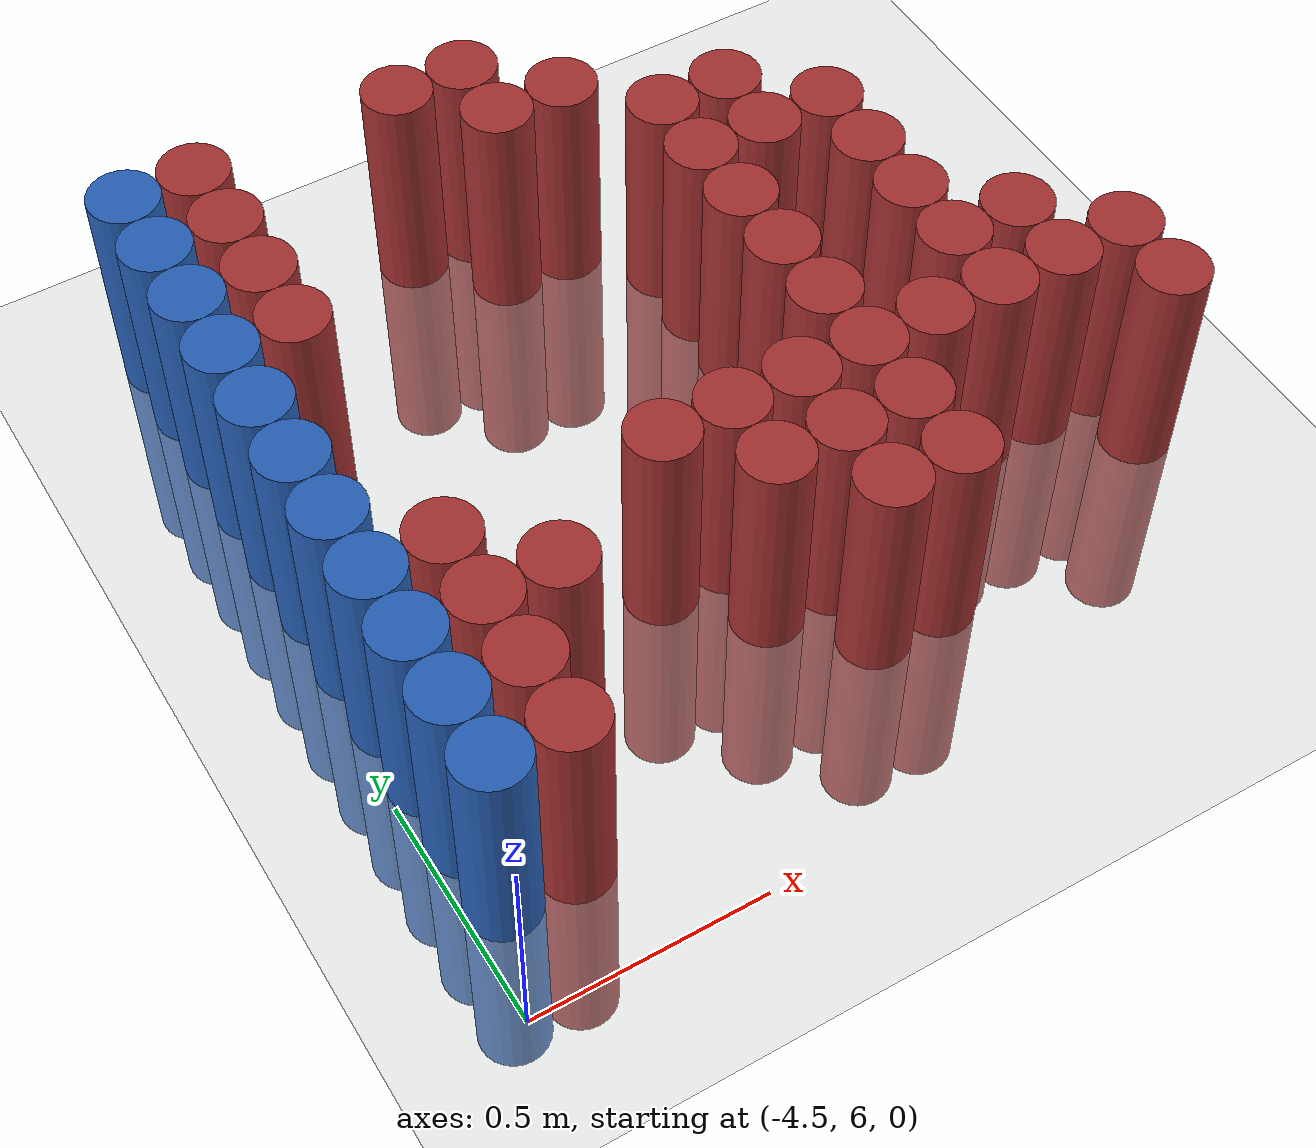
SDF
<sdf version="1.6">
 <world name="default">
  <model name="ground_plane">
   <static>1</static>
   <link name="link">
    <collision name="collision">
     <geometry><plane><normal>0 0 1</normal><size>100 100</size></plane></geometry>
     <surface><friction><ode><mu>100</mu><mu2>50</mu2></ode></friction></surface>
    </collision>
    <visual name="visual">
     <cast_shadows>0</cast_shadows>
     <geometry><plane><normal>0 0 1</normal><size>100 100</size></plane></geometry>
     <material>
      <script><uri>file://media/materials/scripts/gazebo.material</uri><name>Gazebo/Grey</name></script>
     </material>
    </visual>
   </link>
  </model>
  <model name="unit_cylinder_103">
   <static>1</static>
   <pose>-4.425000 6.225000 0.000000 0.000000 0.000000 0.000000</pose>
   <link name="link">
    <inertial>
     <mass>1</mass>
     <inertia><ixx>0.145833</ixx><ixy>0</ixy><ixz>0</ixz><iyy>0.145833</iyy><iyz>0</iyz><izz>0.125</izz></inertia>
    </inertial>
    <collision name="collision">
     <geometry><cylinder><radius>0.075000</radius><length>1</length></cylinder></geometry>
    </collision>
    <visual name="visual">
     <geometry><cylinder><radius>0.075000</radius><length>1</length></cylinder></geometry>
     <material>
      <ambient>0.152000 0.379000 0.720000 1</ambient>
      <diffuse>0.152000 0.379000 0.720000 1</diffuse>
     </material>
     <material>
      <script><name>Gazebo/Grey</name><uri>file://media/materials/scripts/gazebo.material</uri></script>
     </material>
    </visual>
   </link>
  </model>
  <model name="unit_cylinder_104">
   <static>1</static>
   <pose>-4.425000 6.375000 0.000000 0.000000 0.000000 0.000000</pose>
   <link name="link">
    <inertial>
     <mass>1</mass>
     <inertia><ixx>0.145833</ixx><ixy>0</ixy><ixz>0</ixz><iyy>0.145833</iyy><iyz>0</iyz><izz>0.125</izz></inertia>
    </inertial>
    <collision name="collision">
     <geometry><cylinder><radius>0.075000</radius><length>1</length></cylinder></geometry>
    </collision>
    <visual name="visual">
     <geometry><cylinder><radius>0.075000</radius><length>1</length></cylinder></geometry>
     <material>
      <ambient>0.152000 0.379000 0.720000 1</ambient>
      <diffuse>0.152000 0.379000 0.720000 1</diffuse>
     </material>
     <material>
      <script><name>Gazebo/Grey</name><uri>file://media/materials/scripts/gazebo.material</uri></script>
     </material>
    </visual>
   </link>
  </model>
  <model name="unit_cylinder_105">
   <static>1</static>
   <pose>-4.425000 6.525000 0.000000 0.000000 0.000000 0.000000</pose>
   <link name="link">
    <inertial>
     <mass>1</mass>
     <inertia><ixx>0.145833</ixx><ixy>0</ixy><ixz>0</ixz><iyy>0.145833</iyy><iyz>0</iyz><izz>0.125</izz></inertia>
    </inertial>
    <collision name="collision">
     <geometry><cylinder><radius>0.075000</radius><length>1</length></cylinder></geometry>
    </collision>
    <visual name="visual">
     <geometry><cylinder><radius>0.075000</radius><length>1</length></cylinder></geometry>
     <material>
      <ambient>0.152000 0.379000 0.720000 1</ambient>
      <diffuse>0.152000 0.379000 0.720000 1</diffuse>
     </material>
     <material>
      <script><name>Gazebo/Grey</name><uri>file://media/materials/scripts/gazebo.material</uri></script>
     </material>
    </visual>
   </link>
  </model>
  <model name="unit_cylinder_106">
   <static>1</static>
   <pose>-4.425000 6.675000 0.000000 0.000000 0.000000 0.000000</pose>
   <link name="link">
    <inertial>
     <mass>1</mass>
     <inertia><ixx>0.145833</ixx><ixy>0</ixy><ixz>0</ixz><iyy>0.145833</iyy><iyz>0</iyz><izz>0.125</izz></inertia>
    </inertial>
    <collision name="collision">
     <geometry><cylinder><radius>0.075000</radius><length>1</length></cylinder></geometry>
    </collision>
    <visual name="visual">
     <geometry><cylinder><radius>0.075000</radius><length>1</length></cylinder></geometry>
     <material>
      <ambient>0.152000 0.379000 0.720000 1</ambient>
      <diffuse>0.152000 0.379000 0.720000 1</diffuse>
     </material>
     <material>
      <script><name>Gazebo/Grey</name><uri>file://media/materials/scripts/gazebo.material</uri></script>
     </material>
    </visual>
   </link>
  </model>
  <model name="unit_cylinder_107">
   <static>1</static>
   <pose>-4.425000 6.825000 0.000000 0.000000 0.000000 0.000000</pose>
   <link name="link">
    <inertial>
     <mass>1</mass>
     <inertia><ixx>0.145833</ixx><ixy>0</ixy><ixz>0</ixz><iyy>0.145833</iyy><iyz>0</iyz><izz>0.125</izz></inertia>
    </inertial>
    <collision name="collision">
     <geometry><cylinder><radius>0.075000</radius><length>1</length></cylinder></geometry>
    </collision>
    <visual name="visual">
     <geometry><cylinder><radius>0.075000</radius><length>1</length></cylinder></geometry>
     <material>
      <ambient>0.152000 0.379000 0.720000 1</ambient>
      <diffuse>0.152000 0.379000 0.720000 1</diffuse>
     </material>
     <material>
      <script><name>Gazebo/Grey</name><uri>file://media/materials/scripts/gazebo.material</uri></script>
     </material>
    </visual>
   </link>
  </model>
  <model name="unit_cylinder_108">
   <static>1</static>
   <pose>-4.425000 6.975000 0.000000 0.000000 0.000000 0.000000</pose>
   <link name="link">
    <inertial>
     <mass>1</mass>
     <inertia><ixx>0.145833</ixx><ixy>0</ixy><ixz>0</ixz><iyy>0.145833</iyy><iyz>0</iyz><izz>0.125</izz></inertia>
    </inertial>
    <collision name="collision">
     <geometry><cylinder><radius>0.075000</radius><length>1</length></cylinder></geometry>
    </collision>
    <visual name="visual">
     <geometry><cylinder><radius>0.075000</radius><length>1</length></cylinder></geometry>
     <material>
      <ambient>0.152000 0.379000 0.720000 1</ambient>
      <diffuse>0.152000 0.379000 0.720000 1</diffuse>
     </material>
     <material>
      <script><name>Gazebo/Grey</name><uri>file://media/materials/scripts/gazebo.material</uri></script>
     </material>
    </visual>
   </link>
  </model>
  <model name="unit_cylinder_109">
   <static>1</static>
   <pose>-4.425000 7.125000 0.000000 0.000000 0.000000 0.000000</pose>
   <link name="link">
    <inertial>
     <mass>1</mass>
     <inertia><ixx>0.145833</ixx><ixy>0</ixy><ixz>0</ixz><iyy>0.145833</iyy><iyz>0</iyz><izz>0.125</izz></inertia>
    </inertial>
    <collision name="collision">
     <geometry><cylinder><radius>0.075000</radius><length>1</length></cylinder></geometry>
    </collision>
    <visual name="visual">
     <geometry><cylinder><radius>0.075000</radius><length>1</length></cylinder></geometry>
     <material>
      <ambient>0.152000 0.379000 0.720000 1</ambient>
      <diffuse>0.152000 0.379000 0.720000 1</diffuse>
     </material>
     <material>
      <script><name>Gazebo/Grey</name><uri>file://media/materials/scripts/gazebo.material</uri></script>
     </material>
    </visual>
   </link>
  </model>
  <model name="unit_cylinder_110">
   <static>1</static>
   <pose>-4.425000 7.275000 0.000000 0.000000 0.000000 0.000000</pose>
   <link name="link">
    <inertial>
     <mass>1</mass>
     <inertia><ixx>0.145833</ixx><ixy>0</ixy><ixz>0</ixz><iyy>0.145833</iyy><iyz>0</iyz><izz>0.125</izz></inertia>
    </inertial>
    <collision name="collision">
     <geometry><cylinder><radius>0.075000</radius><length>1</length></cylinder></geometry>
    </collision>
    <visual name="visual">
     <geometry><cylinder><radius>0.075000</radius><length>1</length></cylinder></geometry>
     <material>
      <ambient>0.152000 0.379000 0.720000 1</ambient>
      <diffuse>0.152000 0.379000 0.720000 1</diffuse>
     </material>
     <material>
      <script><name>Gazebo/Grey</name><uri>file://media/materials/scripts/gazebo.material</uri></script>
     </material>
    </visual>
   </link>
  </model>
  <model name="unit_cylinder_111">
   <static>1</static>
   <pose>-4.425000 7.425000 0.000000 0.000000 0.000000 0.000000</pose>
   <link name="link">
    <inertial>
     <mass>1</mass>
     <inertia><ixx>0.145833</ixx><ixy>0</ixy><ixz>0</ixz><iyy>0.145833</iyy><iyz>0</iyz><izz>0.125</izz></inertia>
    </inertial>
    <collision name="collision">
     <geometry><cylinder><radius>0.075000</radius><length>1</length></cylinder></geometry>
    </collision>
    <visual name="visual">
     <geometry><cylinder><radius>0.075000</radius><length>1</length></cylinder></geometry>
     <material>
      <ambient>0.152000 0.379000 0.720000 1</ambient>
      <diffuse>0.152000 0.379000 0.720000 1</diffuse>
     </material>
     <material>
      <script><name>Gazebo/Grey</name><uri>file://media/materials/scripts/gazebo.material</uri></script>
     </material>
    </visual>
   </link>
  </model>
  <model name="unit_cylinder_112">
   <static>1</static>
   <pose>-4.425000 7.575000 0.000000 0.000000 0.000000 0.000000</pose>
   <link name="link">
    <inertial>
     <mass>1</mass>
     <inertia><ixx>0.145833</ixx><ixy>0</ixy><ixz>0</ixz><iyy>0.145833</iyy><iyz>0</iyz><izz>0.125</izz></inertia>
    </inertial>
    <collision name="collision">
     <geometry><cylinder><radius>0.075000</radius><length>1</length></cylinder></geometry>
    </collision>
    <visual name="visual">
     <geometry><cylinder><radius>0.075000</radius><length>1</length></cylinder></geometry>
     <material>
      <ambient>0.152000 0.379000 0.720000 1</ambient>
      <diffuse>0.152000 0.379000 0.720000 1</diffuse>
     </material>
     <material>
      <script><name>Gazebo/Grey</name><uri>file://media/materials/scripts/gazebo.material</uri></script>
     </material>
    </visual>
   </link>
  </model>
  <model name="unit_cylinder_113">
   <static>1</static>
   <pose>-4.425000 7.725000 0.000000 0.000000 0.000000 0.000000</pose>
   <link name="link">
    <inertial>
     <mass>1</mass>
     <inertia><ixx>0.145833</ixx><ixy>0</ixy><ixz>0</ixz><iyy>0.145833</iyy><iyz>0</iyz><izz>0.125</izz></inertia>
    </inertial>
    <collision name="collision">
     <geometry><cylinder><radius>0.075000</radius><length>1</length></cylinder></geometry>
    </collision>
    <visual name="visual">
     <geometry><cylinder><radius>0.075000</radius><length>1</length></cylinder></geometry>
     <material>
      <ambient>0.152000 0.379000 0.720000 1</ambient>
      <diffuse>0.152000 0.379000 0.720000 1</diffuse>
     </material>
     <material>
      <script><name>Gazebo/Grey</name><uri>file://media/materials/scripts/gazebo.material</uri></script>
     </material>
    </visual>
   </link>
  </model>
  <model name="unit_cylinder_129">
   <static>1</static>
   <pose>-4.275000 6.225000 0.000000 0.000000 0.000000 0.000000</pose>
   <link name="link">
    <inertial>
     <mass>1</mass>
     <inertia><ixx>0.145833</ixx><ixy>0</ixy><ixz>0</ixz><iyy>0.145833</iyy><iyz>0</iyz><izz>0.125</izz></inertia>
    </inertial>
    <collision name="collision">
     <geometry><cylinder><radius>0.075000</radius><length>1</length></cylinder></geometry>
    </collision>
    <visual name="visual">
     <geometry><cylinder><radius>0.075000</radius><length>1</length></cylinder></geometry>
     <material>
      <ambient>0.648000 0.192000 0.192000 1</ambient>
      <diffuse>0.648000 0.192000 0.192000 1</diffuse>
     </material>
     <material>
      <script><name>Gazebo/Grey</name><uri>file://media/materials/scripts/gazebo.material</uri></script>
     </material>
    </visual>
   </link>
  </model>
  <model name="unit_cylinder_130">
   <static>1</static>
   <pose>-4.275000 6.375000 0.000000 0.000000 0.000000 0.000000</pose>
   <link name="link">
    <inertial>
     <mass>1</mass>
     <inertia><ixx>0.145833</ixx><ixy>0</ixy><ixz>0</ixz><iyy>0.145833</iyy><iyz>0</iyz><izz>0.125</izz></inertia>
    </inertial>
    <collision name="collision">
     <geometry><cylinder><radius>0.075000</radius><length>1</length></cylinder></geometry>
    </collision>
    <visual name="visual">
     <geometry><cylinder><radius>0.075000</radius><length>1</length></cylinder></geometry>
     <material>
      <ambient>0.648000 0.192000 0.192000 1</ambient>
      <diffuse>0.648000 0.192000 0.192000 1</diffuse>
     </material>
     <material>
      <script><name>Gazebo/Grey</name><uri>file://media/materials/scripts/gazebo.material</uri></script>
     </material>
    </visual>
   </link>
  </model>
  <model name="unit_cylinder_131">
   <static>1</static>
   <pose>-4.275000 6.525000 0.000000 0.000000 0.000000 0.000000</pose>
   <link name="link">
    <inertial>
     <mass>1</mass>
     <inertia><ixx>0.145833</ixx><ixy>0</ixy><ixz>0</ixz><iyy>0.145833</iyy><iyz>0</iyz><izz>0.125</izz></inertia>
    </inertial>
    <collision name="collision">
     <geometry><cylinder><radius>0.075000</radius><length>1</length></cylinder></geometry>
    </collision>
    <visual name="visual">
     <geometry><cylinder><radius>0.075000</radius><length>1</length></cylinder></geometry>
     <material>
      <ambient>0.648000 0.192000 0.192000 1</ambient>
      <diffuse>0.648000 0.192000 0.192000 1</diffuse>
     </material>
     <material>
      <script><name>Gazebo/Grey</name><uri>file://media/materials/scripts/gazebo.material</uri></script>
     </material>
    </visual>
   </link>
  </model>
  <model name="unit_cylinder_132">
   <static>1</static>
   <pose>-4.275000 6.675000 0.000000 0.000000 0.000000 0.000000</pose>
   <link name="link">
    <inertial>
     <mass>1</mass>
     <inertia><ixx>0.145833</ixx><ixy>0</ixy><ixz>0</ixz><iyy>0.145833</iyy><iyz>0</iyz><izz>0.125</izz></inertia>
    </inertial>
    <collision name="collision">
     <geometry><cylinder><radius>0.075000</radius><length>1</length></cylinder></geometry>
    </collision>
    <visual name="visual">
     <geometry><cylinder><radius>0.075000</radius><length>1</length></cylinder></geometry>
     <material>
      <ambient>0.648000 0.192000 0.192000 1</ambient>
      <diffuse>0.648000 0.192000 0.192000 1</diffuse>
     </material>
     <material>
      <script><name>Gazebo/Grey</name><uri>file://media/materials/scripts/gazebo.material</uri></script>
     </material>
    </visual>
   </link>
  </model>
  <model name="unit_cylinder_133">
   <static>1</static>
   <pose>-4.275000 7.275000 0.000000 0.000000 0.000000 0.000000</pose>
   <link name="link">
    <inertial>
     <mass>1</mass>
     <inertia><ixx>0.145833</ixx><ixy>0</ixy><ixz>0</ixz><iyy>0.145833</iyy><iyz>0</iyz><izz>0.125</izz></inertia>
    </inertial>
    <collision name="collision">
     <geometry><cylinder><radius>0.075000</radius><length>1</length></cylinder></geometry>
    </collision>
    <visual name="visual">
     <geometry><cylinder><radius>0.075000</radius><length>1</length></cylinder></geometry>
     <material>
      <ambient>0.648000 0.192000 0.192000 1</ambient>
      <diffuse>0.648000 0.192000 0.192000 1</diffuse>
     </material>
     <material>
      <script><name>Gazebo/Grey</name><uri>file://media/materials/scripts/gazebo.material</uri></script>
     </material>
    </visual>
   </link>
  </model>
  <model name="unit_cylinder_134">
   <static>1</static>
   <pose>-4.275000 7.425000 0.000000 0.000000 0.000000 0.000000</pose>
   <link name="link">
    <inertial>
     <mass>1</mass>
     <inertia><ixx>0.145833</ixx><ixy>0</ixy><ixz>0</ixz><iyy>0.145833</iyy><iyz>0</iyz><izz>0.125</izz></inertia>
    </inertial>
    <collision name="collision">
     <geometry><cylinder><radius>0.075000</radius><length>1</length></cylinder></geometry>
    </collision>
    <visual name="visual">
     <geometry><cylinder><radius>0.075000</radius><length>1</length></cylinder></geometry>
     <material>
      <ambient>0.648000 0.192000 0.192000 1</ambient>
      <diffuse>0.648000 0.192000 0.192000 1</diffuse>
     </material>
     <material>
      <script><name>Gazebo/Grey</name><uri>file://media/materials/scripts/gazebo.material</uri></script>
     </material>
    </visual>
   </link>
  </model>
  <model name="unit_cylinder_135">
   <static>1</static>
   <pose>-4.275000 7.575000 0.000000 0.000000 0.000000 0.000000</pose>
   <link name="link">
    <inertial>
     <mass>1</mass>
     <inertia><ixx>0.145833</ixx><ixy>0</ixy><ixz>0</ixz><iyy>0.145833</iyy><iyz>0</iyz><izz>0.125</izz></inertia>
    </inertial>
    <collision name="collision">
     <geometry><cylinder><radius>0.075000</radius><length>1</length></cylinder></geometry>
    </collision>
    <visual name="visual">
     <geometry><cylinder><radius>0.075000</radius><length>1</length></cylinder></geometry>
     <material>
      <ambient>0.648000 0.192000 0.192000 1</ambient>
      <diffuse>0.648000 0.192000 0.192000 1</diffuse>
     </material>
     <material>
      <script><name>Gazebo/Grey</name><uri>file://media/materials/scripts/gazebo.material</uri></script>
     </material>
    </visual>
   </link>
  </model>
  <model name="unit_cylinder_136">
   <static>1</static>
   <pose>-4.275000 7.725000 0.000000 0.000000 0.000000 0.000000</pose>
   <link name="link">
    <inertial>
     <mass>1</mass>
     <inertia><ixx>0.145833</ixx><ixy>0</ixy><ixz>0</ixz><iyy>0.145833</iyy><iyz>0</iyz><izz>0.125</izz></inertia>
    </inertial>
    <collision name="collision">
     <geometry><cylinder><radius>0.075000</radius><length>1</length></cylinder></geometry>
    </collision>
    <visual name="visual">
     <geometry><cylinder><radius>0.075000</radius><length>1</length></cylinder></geometry>
     <material>
      <ambient>0.648000 0.192000 0.192000 1</ambient>
      <diffuse>0.648000 0.192000 0.192000 1</diffuse>
     </material>
     <material>
      <script><name>Gazebo/Grey</name><uri>file://media/materials/scripts/gazebo.material</uri></script>
     </material>
    </visual>
   </link>
  </model>
  <model name="unit_cylinder_144">
   <static>1</static>
   <pose>-4.125000 6.525000 0.000000 0.000000 0.000000 0.000000</pose>
   <link name="link">
    <inertial>
     <mass>1</mass>
     <inertia><ixx>0.145833</ixx><ixy>0</ixy><ixz>0</ixz><iyy>0.145833</iyy><iyz>0</iyz><izz>0.125</izz></inertia>
    </inertial>
    <collision name="collision">
     <geometry><cylinder><radius>0.075000</radius><length>1</length></cylinder></geometry>
    </collision>
    <visual name="visual">
     <geometry><cylinder><radius>0.075000</radius><length>1</length></cylinder></geometry>
     <material>
      <ambient>0.648000 0.192000 0.192000 1</ambient>
      <diffuse>0.648000 0.192000 0.192000 1</diffuse>
     </material>
     <material>
      <script><name>Gazebo/Grey</name><uri>file://media/materials/scripts/gazebo.material</uri></script>
     </material>
    </visual>
   </link>
  </model>
  <model name="unit_cylinder_158">
   <static>1</static>
   <pose>-3.825000 6.675000 0.000000 0.000000 0.000000 0.000000</pose>
   <link name="link">
    <inertial>
     <mass>1</mass>
     <inertia><ixx>0.145833</ixx><ixy>0</ixy><ixz>0</ixz><iyy>0.145833</iyy><iyz>0</iyz><izz>0.125</izz></inertia>
    </inertial>
    <collision name="collision">
     <geometry><cylinder><radius>0.075000</radius><length>1</length></cylinder></geometry>
    </collision>
    <visual name="visual">
     <geometry><cylinder><radius>0.075000</radius><length>1</length></cylinder></geometry>
     <material>
      <ambient>0.648000 0.192000 0.192000 1</ambient>
      <diffuse>0.648000 0.192000 0.192000 1</diffuse>
     </material>
     <material>
      <script><name>Gazebo/Grey</name><uri>file://media/materials/scripts/gazebo.material</uri></script>
     </material>
    </visual>
   </link>
  </model>
  <model name="unit_cylinder_159">
   <static>1</static>
   <pose>-3.825000 7.725000 0.000000 0.000000 0.000000 0.000000</pose>
   <link name="link">
    <inertial>
     <mass>1</mass>
     <inertia><ixx>0.145833</ixx><ixy>0</ixy><ixz>0</ixz><iyy>0.145833</iyy><iyz>0</iyz><izz>0.125</izz></inertia>
    </inertial>
    <collision name="collision">
     <geometry><cylinder><radius>0.075000</radius><length>1</length></cylinder></geometry>
    </collision>
    <visual name="visual">
     <geometry><cylinder><radius>0.075000</radius><length>1</length></cylinder></geometry>
     <material>
      <ambient>0.648000 0.192000 0.192000 1</ambient>
      <diffuse>0.648000 0.192000 0.192000 1</diffuse>
     </material>
     <material>
      <script><name>Gazebo/Grey</name><uri>file://media/materials/scripts/gazebo.material</uri></script>
     </material>
    </visual>
   </link>
  </model>
  <model name="unit_cylinder_166">
   <static>1</static>
   <pose>-3.675000 6.525000 0.000000 0.000000 0.000000 0.000000</pose>
   <link name="link">
    <inertial>
     <mass>1</mass>
     <inertia><ixx>0.145833</ixx><ixy>0</ixy><ixz>0</ixz><iyy>0.145833</iyy><iyz>0</iyz><izz>0.125</izz></inertia>
    </inertial>
    <collision name="collision">
     <geometry><cylinder><radius>0.075000</radius><length>1</length></cylinder></geometry>
    </collision>
    <visual name="visual">
     <geometry><cylinder><radius>0.075000</radius><length>1</length></cylinder></geometry>
     <material>
      <ambient>0.648000 0.192000 0.192000 1</ambient>
      <diffuse>0.648000 0.192000 0.192000 1</diffuse>
     </material>
     <material>
      <script><name>Gazebo/Grey</name><uri>file://media/materials/scripts/gazebo.material</uri></script>
     </material>
    </visual>
   </link>
  </model>
  <model name="unit_cylinder_167">
   <static>1</static>
   <pose>-3.675000 6.675000 0.000000 0.000000 0.000000 0.000000</pose>
   <link name="link">
    <inertial>
     <mass>1</mass>
     <inertia><ixx>0.145833</ixx><ixy>0</ixy><ixz>0</ixz><iyy>0.145833</iyy><iyz>0</iyz><izz>0.125</izz></inertia>
    </inertial>
    <collision name="collision">
     <geometry><cylinder><radius>0.075000</radius><length>1</length></cylinder></geometry>
    </collision>
    <visual name="visual">
     <geometry><cylinder><radius>0.075000</radius><length>1</length></cylinder></geometry>
     <material>
      <ambient>0.648000 0.192000 0.192000 1</ambient>
      <diffuse>0.648000 0.192000 0.192000 1</diffuse>
     </material>
     <material>
      <script><name>Gazebo/Grey</name><uri>file://media/materials/scripts/gazebo.material</uri></script>
     </material>
    </visual>
   </link>
  </model>
  <model name="unit_cylinder_168">
   <static>1</static>
   <pose>-3.675000 7.575000 0.000000 0.000000 0.000000 0.000000</pose>
   <link name="link">
    <inertial>
     <mass>1</mass>
     <inertia><ixx>0.145833</ixx><ixy>0</ixy><ixz>0</ixz><iyy>0.145833</iyy><iyz>0</iyz><izz>0.125</izz></inertia>
    </inertial>
    <collision name="collision">
     <geometry><cylinder><radius>0.075000</radius><length>1</length></cylinder></geometry>
    </collision>
    <visual name="visual">
     <geometry><cylinder><radius>0.075000</radius><length>1</length></cylinder></geometry>
     <material>
      <ambient>0.648000 0.192000 0.192000 1</ambient>
      <diffuse>0.648000 0.192000 0.192000 1</diffuse>
     </material>
     <material>
      <script><name>Gazebo/Grey</name><uri>file://media/materials/scripts/gazebo.material</uri></script>
     </material>
    </visual>
   </link>
  </model>
  <model name="unit_cylinder_169">
   <static>1</static>
   <pose>-3.675000 7.725000 0.000000 0.000000 0.000000 0.000000</pose>
   <link name="link">
    <inertial>
     <mass>1</mass>
     <inertia><ixx>0.145833</ixx><ixy>0</ixy><ixz>0</ixz><iyy>0.145833</iyy><iyz>0</iyz><izz>0.125</izz></inertia>
    </inertial>
    <collision name="collision">
     <geometry><cylinder><radius>0.075000</radius><length>1</length></cylinder></geometry>
    </collision>
    <visual name="visual">
     <geometry><cylinder><radius>0.075000</radius><length>1</length></cylinder></geometry>
     <material>
      <ambient>0.648000 0.192000 0.192000 1</ambient>
      <diffuse>0.648000 0.192000 0.192000 1</diffuse>
     </material>
     <material>
      <script><name>Gazebo/Grey</name><uri>file://media/materials/scripts/gazebo.material</uri></script>
     </material>
    </visual>
   </link>
  </model>
  <model name="unit_cylinder_177">
   <static>1</static>
   <pose>-3.525000 6.375000 0.000000 0.000000 0.000000 0.000000</pose>
   <link name="link">
    <inertial>
     <mass>1</mass>
     <inertia><ixx>0.145833</ixx><ixy>0</ixy><ixz>0</ixz><iyy>0.145833</iyy><iyz>0</iyz><izz>0.125</izz></inertia>
    </inertial>
    <collision name="collision">
     <geometry><cylinder><radius>0.075000</radius><length>1</length></cylinder></geometry>
    </collision>
    <visual name="visual">
     <geometry><cylinder><radius>0.075000</radius><length>1</length></cylinder></geometry>
     <material>
      <ambient>0.648000 0.192000 0.192000 1</ambient>
      <diffuse>0.648000 0.192000 0.192000 1</diffuse>
     </material>
     <material>
      <script><name>Gazebo/Grey</name><uri>file://media/materials/scripts/gazebo.material</uri></script>
     </material>
    </visual>
   </link>
  </model>
  <model name="unit_cylinder_178">
   <static>1</static>
   <pose>-3.525000 6.525000 0.000000 0.000000 0.000000 0.000000</pose>
   <link name="link">
    <inertial>
     <mass>1</mass>
     <inertia><ixx>0.145833</ixx><ixy>0</ixy><ixz>0</ixz><iyy>0.145833</iyy><iyz>0</iyz><izz>0.125</izz></inertia>
    </inertial>
    <collision name="collision">
     <geometry><cylinder><radius>0.075000</radius><length>1</length></cylinder></geometry>
    </collision>
    <visual name="visual">
     <geometry><cylinder><radius>0.075000</radius><length>1</length></cylinder></geometry>
     <material>
      <ambient>0.648000 0.192000 0.192000 1</ambient>
      <diffuse>0.648000 0.192000 0.192000 1</diffuse>
     </material>
     <material>
      <script><name>Gazebo/Grey</name><uri>file://media/materials/scripts/gazebo.material</uri></script>
     </material>
    </visual>
   </link>
  </model>
  <model name="unit_cylinder_179">
   <static>1</static>
   <pose>-3.525000 6.675000 0.000000 0.000000 0.000000 0.000000</pose>
   <link name="link">
    <inertial>
     <mass>1</mass>
     <inertia><ixx>0.145833</ixx><ixy>0</ixy><ixz>0</ixz><iyy>0.145833</iyy><iyz>0</iyz><izz>0.125</izz></inertia>
    </inertial>
    <collision name="collision">
     <geometry><cylinder><radius>0.075000</radius><length>1</length></cylinder></geometry>
    </collision>
    <visual name="visual">
     <geometry><cylinder><radius>0.075000</radius><length>1</length></cylinder></geometry>
     <material>
      <ambient>0.648000 0.192000 0.192000 1</ambient>
      <diffuse>0.648000 0.192000 0.192000 1</diffuse>
     </material>
     <material>
      <script><name>Gazebo/Grey</name><uri>file://media/materials/scripts/gazebo.material</uri></script>
     </material>
    </visual>
   </link>
  </model>
  <model name="unit_cylinder_180">
   <static>1</static>
   <pose>-3.525000 7.575000 0.000000 0.000000 0.000000 0.000000</pose>
   <link name="link">
    <inertial>
     <mass>1</mass>
     <inertia><ixx>0.145833</ixx><ixy>0</ixy><ixz>0</ixz><iyy>0.145833</iyy><iyz>0</iyz><izz>0.125</izz></inertia>
    </inertial>
    <collision name="collision">
     <geometry><cylinder><radius>0.075000</radius><length>1</length></cylinder></geometry>
    </collision>
    <visual name="visual">
     <geometry><cylinder><radius>0.075000</radius><length>1</length></cylinder></geometry>
     <material>
      <ambient>0.648000 0.192000 0.192000 1</ambient>
      <diffuse>0.648000 0.192000 0.192000 1</diffuse>
     </material>
     <material>
      <script><name>Gazebo/Grey</name><uri>file://media/materials/scripts/gazebo.material</uri></script>
     </material>
    </visual>
   </link>
  </model>
  <model name="unit_cylinder_188">
   <static>1</static>
   <pose>-3.375000 6.375000 0.000000 0.000000 0.000000 0.000000</pose>
   <link name="link">
    <inertial>
     <mass>1</mass>
     <inertia><ixx>0.145833</ixx><ixy>0</ixy><ixz>0</ixz><iyy>0.145833</iyy><iyz>0</iyz><izz>0.125</izz></inertia>
    </inertial>
    <collision name="collision">
     <geometry><cylinder><radius>0.075000</radius><length>1</length></cylinder></geometry>
    </collision>
    <visual name="visual">
     <geometry><cylinder><radius>0.075000</radius><length>1</length></cylinder></geometry>
     <material>
      <ambient>0.648000 0.192000 0.192000 1</ambient>
      <diffuse>0.648000 0.192000 0.192000 1</diffuse>
     </material>
     <material>
      <script><name>Gazebo/Grey</name><uri>file://media/materials/scripts/gazebo.material</uri></script>
     </material>
    </visual>
   </link>
  </model>
  <model name="unit_cylinder_189">
   <static>1</static>
   <pose>-3.375000 6.525000 0.000000 0.000000 0.000000 0.000000</pose>
   <link name="link">
    <inertial>
     <mass>1</mass>
     <inertia><ixx>0.145833</ixx><ixy>0</ixy><ixz>0</ixz><iyy>0.145833</iyy><iyz>0</iyz><izz>0.125</izz></inertia>
    </inertial>
    <collision name="collision">
     <geometry><cylinder><radius>0.075000</radius><length>1</length></cylinder></geometry>
    </collision>
    <visual name="visual">
     <geometry><cylinder><radius>0.075000</radius><length>1</length></cylinder></geometry>
     <material>
      <ambient>0.648000 0.192000 0.192000 1</ambient>
      <diffuse>0.648000 0.192000 0.192000 1</diffuse>
     </material>
     <material>
      <script><name>Gazebo/Grey</name><uri>file://media/materials/scripts/gazebo.material</uri></script>
     </material>
    </visual>
   </link>
  </model>
  <model name="unit_cylinder_190">
   <static>1</static>
   <pose>-3.375000 6.675000 0.000000 0.000000 0.000000 0.000000</pose>
   <link name="link">
    <inertial>
     <mass>1</mass>
     <inertia><ixx>0.145833</ixx><ixy>0</ixy><ixz>0</ixz><iyy>0.145833</iyy><iyz>0</iyz><izz>0.125</izz></inertia>
    </inertial>
    <collision name="collision">
     <geometry><cylinder><radius>0.075000</radius><length>1</length></cylinder></geometry>
    </collision>
    <visual name="visual">
     <geometry><cylinder><radius>0.075000</radius><length>1</length></cylinder></geometry>
     <material>
      <ambient>0.648000 0.192000 0.192000 1</ambient>
      <diffuse>0.648000 0.192000 0.192000 1</diffuse>
     </material>
     <material>
      <script><name>Gazebo/Grey</name><uri>file://media/materials/scripts/gazebo.material</uri></script>
     </material>
    </visual>
   </link>
  </model>
  <model name="unit_cylinder_191">
   <static>1</static>
   <pose>-3.375000 6.825000 0.000000 0.000000 0.000000 0.000000</pose>
   <link name="link">
    <inertial>
     <mass>1</mass>
     <inertia><ixx>0.145833</ixx><ixy>0</ixy><ixz>0</ixz><iyy>0.145833</iyy><iyz>0</iyz><izz>0.125</izz></inertia>
    </inertial>
    <collision name="collision">
     <geometry><cylinder><radius>0.075000</radius><length>1</length></cylinder></geometry>
    </collision>
    <visual name="visual">
     <geometry><cylinder><radius>0.075000</radius><length>1</length></cylinder></geometry>
     <material>
      <ambient>0.648000 0.192000 0.192000 1</ambient>
      <diffuse>0.648000 0.192000 0.192000 1</diffuse>
     </material>
     <material>
      <script><name>Gazebo/Grey</name><uri>file://media/materials/scripts/gazebo.material</uri></script>
     </material>
    </visual>
   </link>
  </model>
  <model name="unit_cylinder_192">
   <static>1</static>
   <pose>-3.375000 6.975000 0.000000 0.000000 0.000000 0.000000</pose>
   <link name="link">
    <inertial>
     <mass>1</mass>
     <inertia><ixx>0.145833</ixx><ixy>0</ixy><ixz>0</ixz><iyy>0.145833</iyy><iyz>0</iyz><izz>0.125</izz></inertia>
    </inertial>
    <collision name="collision">
     <geometry><cylinder><radius>0.075000</radius><length>1</length></cylinder></geometry>
    </collision>
    <visual name="visual">
     <geometry><cylinder><radius>0.075000</radius><length>1</length></cylinder></geometry>
     <material>
      <ambient>0.648000 0.192000 0.192000 1</ambient>
      <diffuse>0.648000 0.192000 0.192000 1</diffuse>
     </material>
     <material>
      <script><name>Gazebo/Grey</name><uri>file://media/materials/scripts/gazebo.material</uri></script>
     </material>
    </visual>
   </link>
  </model>
  <model name="unit_cylinder_193">
   <static>1</static>
   <pose>-3.375000 7.125000 0.000000 0.000000 0.000000 0.000000</pose>
   <link name="link">
    <inertial>
     <mass>1</mass>
     <inertia><ixx>0.145833</ixx><ixy>0</ixy><ixz>0</ixz><iyy>0.145833</iyy><iyz>0</iyz><izz>0.125</izz></inertia>
    </inertial>
    <collision name="collision">
     <geometry><cylinder><radius>0.075000</radius><length>1</length></cylinder></geometry>
    </collision>
    <visual name="visual">
     <geometry><cylinder><radius>0.075000</radius><length>1</length></cylinder></geometry>
     <material>
      <ambient>0.648000 0.192000 0.192000 1</ambient>
      <diffuse>0.648000 0.192000 0.192000 1</diffuse>
     </material>
     <material>
      <script><name>Gazebo/Grey</name><uri>file://media/materials/scripts/gazebo.material</uri></script>
     </material>
    </visual>
   </link>
  </model>
  <model name="unit_cylinder_194">
   <static>1</static>
   <pose>-3.375000 7.275000 0.000000 0.000000 0.000000 0.000000</pose>
   <link name="link">
    <inertial>
     <mass>1</mass>
     <inertia><ixx>0.145833</ixx><ixy>0</ixy><ixz>0</ixz><iyy>0.145833</iyy><iyz>0</iyz><izz>0.125</izz></inertia>
    </inertial>
    <collision name="collision">
     <geometry><cylinder><radius>0.075000</radius><length>1</length></cylinder></geometry>
    </collision>
    <visual name="visual">
     <geometry><cylinder><radius>0.075000</radius><length>1</length></cylinder></geometry>
     <material>
      <ambient>0.648000 0.192000 0.192000 1</ambient>
      <diffuse>0.648000 0.192000 0.192000 1</diffuse>
     </material>
     <material>
      <script><name>Gazebo/Grey</name><uri>file://media/materials/scripts/gazebo.material</uri></script>
     </material>
    </visual>
   </link>
  </model>
  <model name="unit_cylinder_195">
   <static>1</static>
   <pose>-3.375000 7.425000 0.000000 0.000000 0.000000 0.000000</pose>
   <link name="link">
    <inertial>
     <mass>1</mass>
     <inertia><ixx>0.145833</ixx><ixy>0</ixy><ixz>0</ixz><iyy>0.145833</iyy><iyz>0</iyz><izz>0.125</izz></inertia>
    </inertial>
    <collision name="collision">
     <geometry><cylinder><radius>0.075000</radius><length>1</length></cylinder></geometry>
    </collision>
    <visual name="visual">
     <geometry><cylinder><radius>0.075000</radius><length>1</length></cylinder></geometry>
     <material>
      <ambient>0.648000 0.192000 0.192000 1</ambient>
      <diffuse>0.648000 0.192000 0.192000 1</diffuse>
     </material>
     <material>
      <script><name>Gazebo/Grey</name><uri>file://media/materials/scripts/gazebo.material</uri></script>
     </material>
    </visual>
   </link>
  </model>
  <model name="unit_cylinder_201">
   <static>1</static>
   <pose>-3.225000 6.675000 0.000000 0.000000 0.000000 0.000000</pose>
   <link name="link">
    <inertial>
     <mass>1</mass>
     <inertia><ixx>0.145833</ixx><ixy>0</ixy><ixz>0</ixz><iyy>0.145833</iyy><iyz>0</iyz><izz>0.125</izz></inertia>
    </inertial>
    <collision name="collision">
     <geometry><cylinder><radius>0.075000</radius><length>1</length></cylinder></geometry>
    </collision>
    <visual name="visual">
     <geometry><cylinder><radius>0.075000</radius><length>1</length></cylinder></geometry>
     <material>
      <ambient>0.648000 0.192000 0.192000 1</ambient>
      <diffuse>0.648000 0.192000 0.192000 1</diffuse>
     </material>
     <material>
      <script><name>Gazebo/Grey</name><uri>file://media/materials/scripts/gazebo.material</uri></script>
     </material>
    </visual>
   </link>
  </model>
  <model name="unit_cylinder_202">
   <static>1</static>
   <pose>-3.225000 7.275000 0.000000 0.000000 0.000000 0.000000</pose>
   <link name="link">
    <inertial>
     <mass>1</mass>
     <inertia><ixx>0.145833</ixx><ixy>0</ixy><ixz>0</ixz><iyy>0.145833</iyy><iyz>0</iyz><izz>0.125</izz></inertia>
    </inertial>
    <collision name="collision">
     <geometry><cylinder><radius>0.075000</radius><length>1</length></cylinder></geometry>
    </collision>
    <visual name="visual">
     <geometry><cylinder><radius>0.075000</radius><length>1</length></cylinder></geometry>
     <material>
      <ambient>0.648000 0.192000 0.192000 1</ambient>
      <diffuse>0.648000 0.192000 0.192000 1</diffuse>
     </material>
     <material>
      <script><name>Gazebo/Grey</name><uri>file://media/materials/scripts/gazebo.material</uri></script>
     </material>
    </visual>
   </link>
  </model>
  <model name="unit_cylinder_203">
   <static>1</static>
   <pose>-3.225000 7.425000 0.000000 0.000000 0.000000 0.000000</pose>
   <link name="link">
    <inertial>
     <mass>1</mass>
     <inertia><ixx>0.145833</ixx><ixy>0</ixy><ixz>0</ixz><iyy>0.145833</iyy><iyz>0</iyz><izz>0.125</izz></inertia>
    </inertial>
    <collision name="collision">
     <geometry><cylinder><radius>0.075000</radius><length>1</length></cylinder></geometry>
    </collision>
    <visual name="visual">
     <geometry><cylinder><radius>0.075000</radius><length>1</length></cylinder></geometry>
     <material>
      <ambient>0.648000 0.192000 0.192000 1</ambient>
      <diffuse>0.648000 0.192000 0.192000 1</diffuse>
     </material>
     <material>
      <script><name>Gazebo/Grey</name><uri>file://media/materials/scripts/gazebo.material</uri></script>
     </material>
    </visual>
   </link>
  </model>
  <model name="unit_cylinder_206">
   <static>1</static>
   <pose>-3.075000 6.675000 0.000000 0.000000 0.000000 0.000000</pose>
   <link name="link">
    <inertial>
     <mass>1</mass>
     <inertia><ixx>0.145833</ixx><ixy>0</ixy><ixz>0</ixz><iyy>0.145833</iyy><iyz>0</iyz><izz>0.125</izz></inertia>
    </inertial>
    <collision name="collision">
     <geometry><cylinder><radius>0.075000</radius><length>1</length></cylinder></geometry>
    </collision>
    <visual name="visual">
     <geometry><cylinder><radius>0.075000</radius><length>1</length></cylinder></geometry>
     <material>
      <ambient>0.648000 0.192000 0.192000 1</ambient>
      <diffuse>0.648000 0.192000 0.192000 1</diffuse>
     </material>
     <material>
      <script><name>Gazebo/Grey</name><uri>file://media/materials/scripts/gazebo.material</uri></script>
     </material>
    </visual>
   </link>
  </model>
  <model name="unit_cylinder_207">
   <static>1</static>
   <pose>-3.075000 6.825000 0.000000 0.000000 0.000000 0.000000</pose>
   <link name="link">
    <inertial>
     <mass>1</mass>
     <inertia><ixx>0.145833</ixx><ixy>0</ixy><ixz>0</ixz><iyy>0.145833</iyy><iyz>0</iyz><izz>0.125</izz></inertia>
    </inertial>
    <collision name="collision">
     <geometry><cylinder><radius>0.075000</radius><length>1</length></cylinder></geometry>
    </collision>
    <visual name="visual">
     <geometry><cylinder><radius>0.075000</radius><length>1</length></cylinder></geometry>
     <material>
      <ambient>0.648000 0.192000 0.192000 1</ambient>
      <diffuse>0.648000 0.192000 0.192000 1</diffuse>
     </material>
     <material>
      <script><name>Gazebo/Grey</name><uri>file://media/materials/scripts/gazebo.material</uri></script>
     </material>
    </visual>
   </link>
  </model>
  <model name="unit_cylinder_208">
   <static>1</static>
   <pose>-3.075000 6.975000 0.000000 0.000000 0.000000 0.000000</pose>
   <link name="link">
    <inertial>
     <mass>1</mass>
     <inertia><ixx>0.145833</ixx><ixy>0</ixy><ixz>0</ixz><iyy>0.145833</iyy><iyz>0</iyz><izz>0.125</izz></inertia>
    </inertial>
    <collision name="collision">
     <geometry><cylinder><radius>0.075000</radius><length>1</length></cylinder></geometry>
    </collision>
    <visual name="visual">
     <geometry><cylinder><radius>0.075000</radius><length>1</length></cylinder></geometry>
     <material>
      <ambient>0.648000 0.192000 0.192000 1</ambient>
      <diffuse>0.648000 0.192000 0.192000 1</diffuse>
     </material>
     <material>
      <script><name>Gazebo/Grey</name><uri>file://media/materials/scripts/gazebo.material</uri></script>
     </material>
    </visual>
   </link>
  </model>
  <model name="unit_cylinder_209">
   <static>1</static>
   <pose>-3.075000 7.125000 0.000000 0.000000 0.000000 0.000000</pose>
   <link name="link">
    <inertial>
     <mass>1</mass>
     <inertia><ixx>0.145833</ixx><ixy>0</ixy><ixz>0</ixz><iyy>0.145833</iyy><iyz>0</iyz><izz>0.125</izz></inertia>
    </inertial>
    <collision name="collision">
     <geometry><cylinder><radius>0.075000</radius><length>1</length></cylinder></geometry>
    </collision>
    <visual name="visual">
     <geometry><cylinder><radius>0.075000</radius><length>1</length></cylinder></geometry>
     <material>
      <ambient>0.648000 0.192000 0.192000 1</ambient>
      <diffuse>0.648000 0.192000 0.192000 1</diffuse>
     </material>
     <material>
      <script><name>Gazebo/Grey</name><uri>file://media/materials/scripts/gazebo.material</uri></script>
     </material>
    </visual>
   </link>
  </model>
  <model name="unit_cylinder_210">
   <static>1</static>
   <pose>-3.075000 7.275000 0.000000 0.000000 0.000000 0.000000</pose>
   <link name="link">
    <inertial>
     <mass>1</mass>
     <inertia><ixx>0.145833</ixx><ixy>0</ixy><ixz>0</ixz><iyy>0.145833</iyy><iyz>0</iyz><izz>0.125</izz></inertia>
    </inertial>
    <collision name="collision">
     <geometry><cylinder><radius>0.075000</radius><length>1</length></cylinder></geometry>
    </collision>
    <visual name="visual">
     <geometry><cylinder><radius>0.075000</radius><length>1</length></cylinder></geometry>
     <material>
      <ambient>0.648000 0.192000 0.192000 1</ambient>
      <diffuse>0.648000 0.192000 0.192000 1</diffuse>
     </material>
     <material>
      <script><name>Gazebo/Grey</name><uri>file://media/materials/scripts/gazebo.material</uri></script>
     </material>
    </visual>
   </link>
  </model>
  <model name="unit_cylinder_215">
   <static>1</static>
   <pose>-2.925000 6.675000 0.000000 0.000000 0.000000 0.000000</pose>
   <link name="link">
    <inertial>
     <mass>1</mass>
     <inertia><ixx>0.145833</ixx><ixy>0</ixy><ixz>0</ixz><iyy>0.145833</iyy><iyz>0</iyz><izz>0.125</izz></inertia>
    </inertial>
    <collision name="collision">
     <geometry><cylinder><radius>0.075000</radius><length>1</length></cylinder></geometry>
    </collision>
    <visual name="visual">
     <geometry><cylinder><radius>0.075000</radius><length>1</length></cylinder></geometry>
     <material>
      <ambient>0.648000 0.192000 0.192000 1</ambient>
      <diffuse>0.648000 0.192000 0.192000 1</diffuse>
     </material>
     <material>
      <script><name>Gazebo/Grey</name><uri>file://media/materials/scripts/gazebo.material</uri></script>
     </material>
    </visual>
   </link>
  </model>
  <model name="unit_cylinder_216">
   <static>1</static>
   <pose>-2.925000 6.825000 0.000000 0.000000 0.000000 0.000000</pose>
   <link name="link">
    <inertial>
     <mass>1</mass>
     <inertia><ixx>0.145833</ixx><ixy>0</ixy><ixz>0</ixz><iyy>0.145833</iyy><iyz>0</iyz><izz>0.125</izz></inertia>
    </inertial>
    <collision name="collision">
     <geometry><cylinder><radius>0.075000</radius><length>1</length></cylinder></geometry>
    </collision>
    <visual name="visual">
     <geometry><cylinder><radius>0.075000</radius><length>1</length></cylinder></geometry>
     <material>
      <ambient>0.648000 0.192000 0.192000 1</ambient>
      <diffuse>0.648000 0.192000 0.192000 1</diffuse>
     </material>
     <material>
      <script><name>Gazebo/Grey</name><uri>file://media/materials/scripts/gazebo.material</uri></script>
     </material>
    </visual>
   </link>
  </model>
  <model name="unit_cylinder_222">
   <static>1</static>
   <pose>-2.775000 6.525000 0.000000 0.000000 0.000000 0.000000</pose>
   <link name="link">
    <inertial>
     <mass>1</mass>
     <inertia><ixx>0.145833</ixx><ixy>0</ixy><ixz>0</ixz><iyy>0.145833</iyy><iyz>0</iyz><izz>0.125</izz></inertia>
    </inertial>
    <collision name="collision">
     <geometry><cylinder><radius>0.075000</radius><length>1</length></cylinder></geometry>
    </collision>
    <visual name="visual">
     <geometry><cylinder><radius>0.075000</radius><length>1</length></cylinder></geometry>
     <material>
      <ambient>0.648000 0.192000 0.192000 1</ambient>
      <diffuse>0.648000 0.192000 0.192000 1</diffuse>
     </material>
     <material>
      <script><name>Gazebo/Grey</name><uri>file://media/materials/scripts/gazebo.material</uri></script>
     </material>
    </visual>
   </link>
  </model>
  <model name="unit_cylinder_223">
   <static>1</static>
   <pose>-2.775000 6.675000 0.000000 0.000000 0.000000 0.000000</pose>
   <link name="link">
    <inertial>
     <mass>1</mass>
     <inertia><ixx>0.145833</ixx><ixy>0</ixy><ixz>0</ixz><iyy>0.145833</iyy><iyz>0</iyz><izz>0.125</izz></inertia>
    </inertial>
    <collision name="collision">
     <geometry><cylinder><radius>0.075000</radius><length>1</length></cylinder></geometry>
    </collision>
    <visual name="visual">
     <geometry><cylinder><radius>0.075000</radius><length>1</length></cylinder></geometry>
     <material>
      <ambient>0.648000 0.192000 0.192000 1</ambient>
      <diffuse>0.648000 0.192000 0.192000 1</diffuse>
     </material>
     <material>
      <script><name>Gazebo/Grey</name><uri>file://media/materials/scripts/gazebo.material</uri></script>
     </material>
    </visual>
   </link>
  </model>
 </world>
</sdf>
